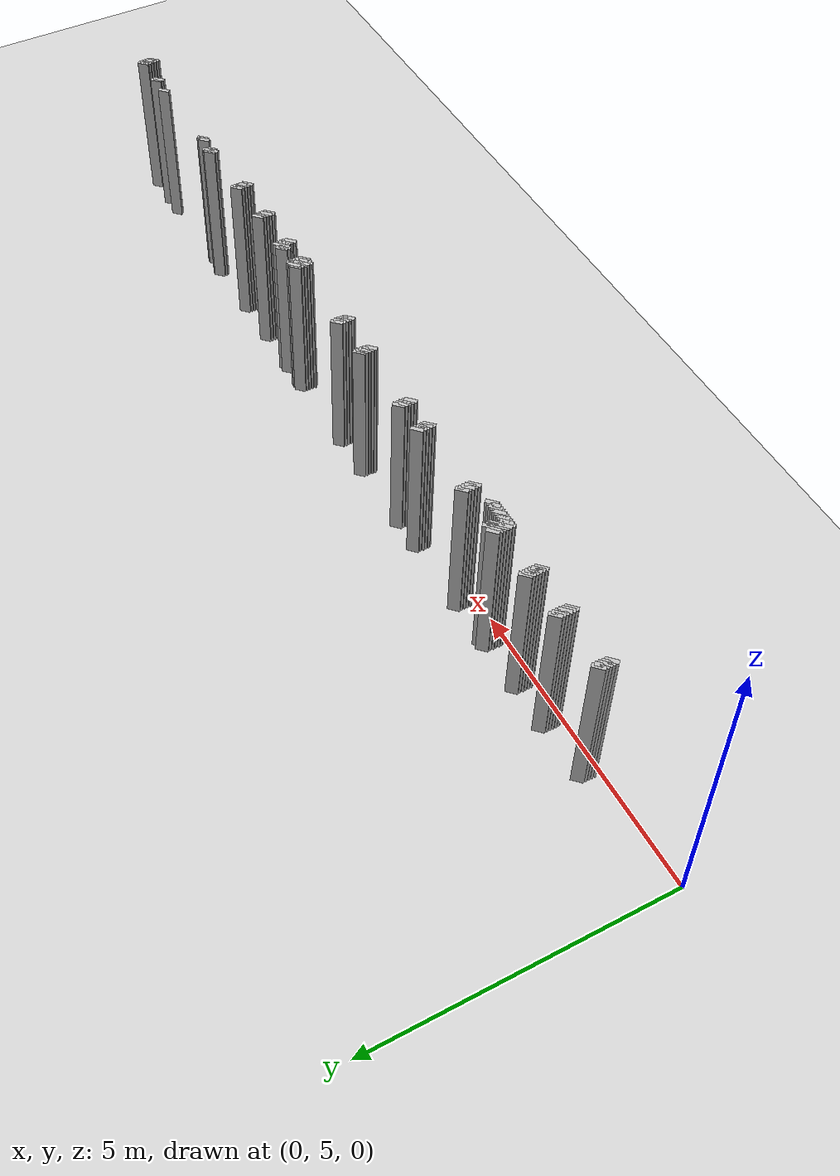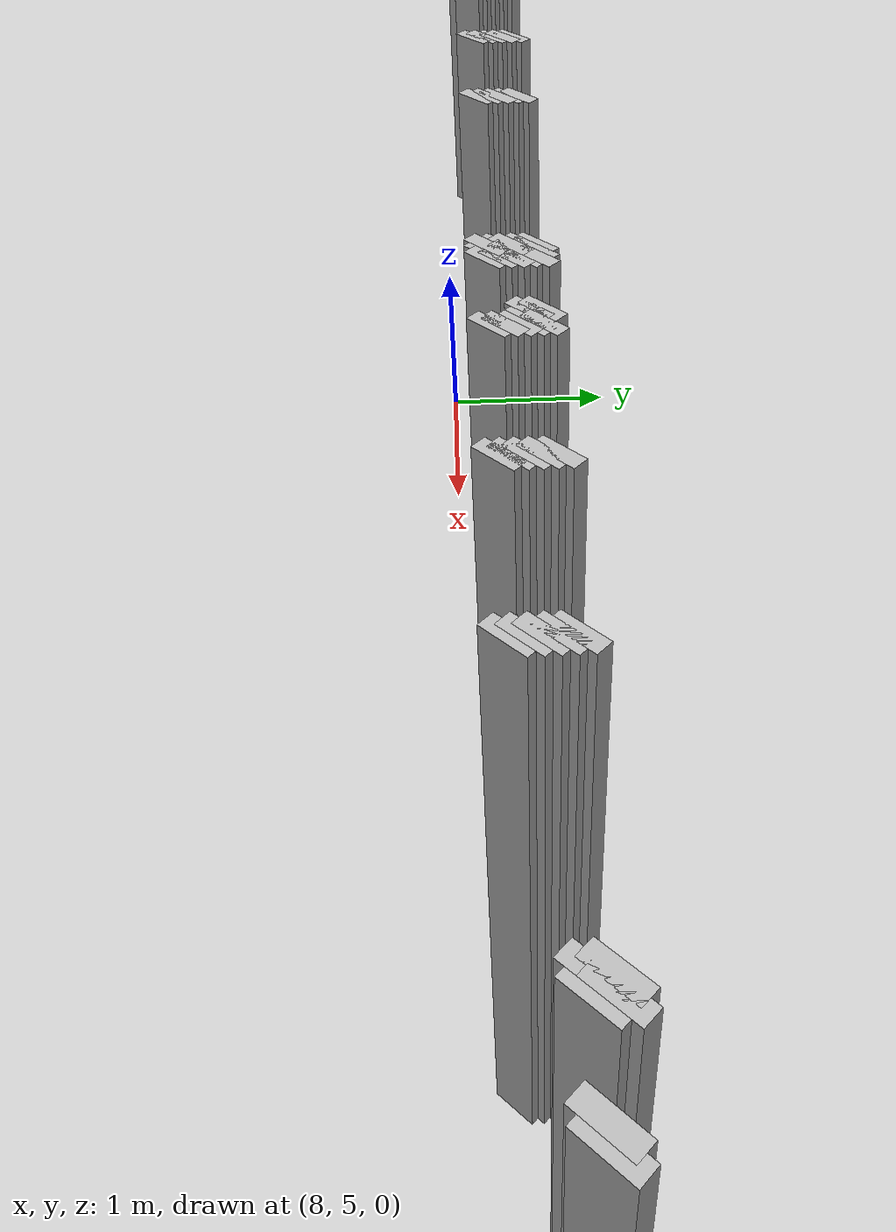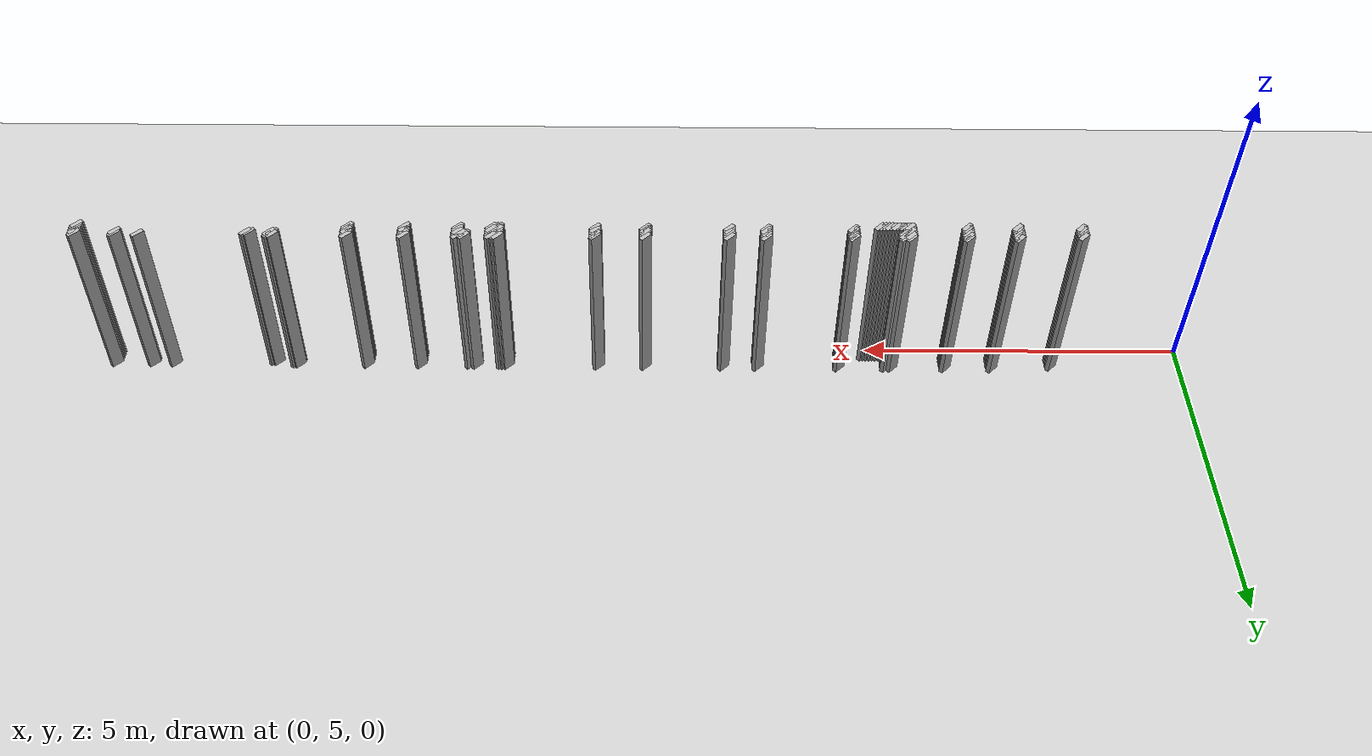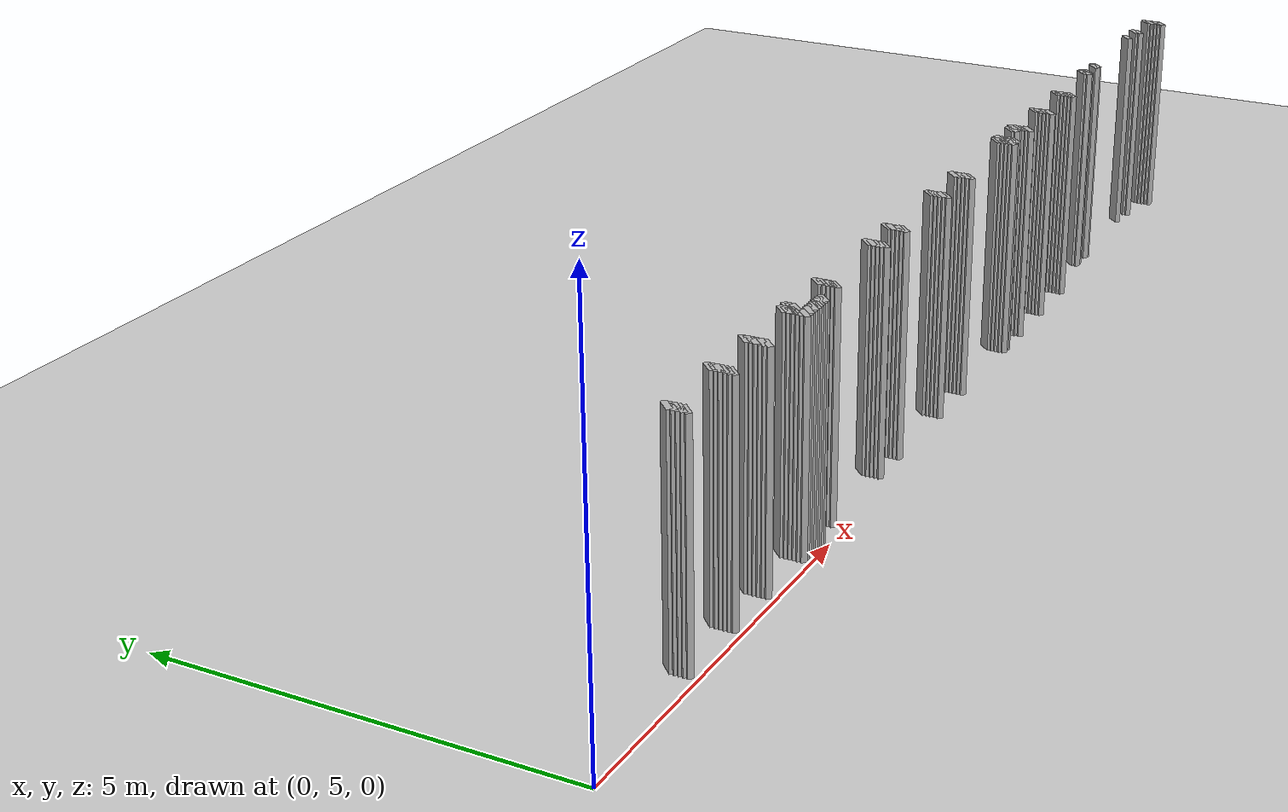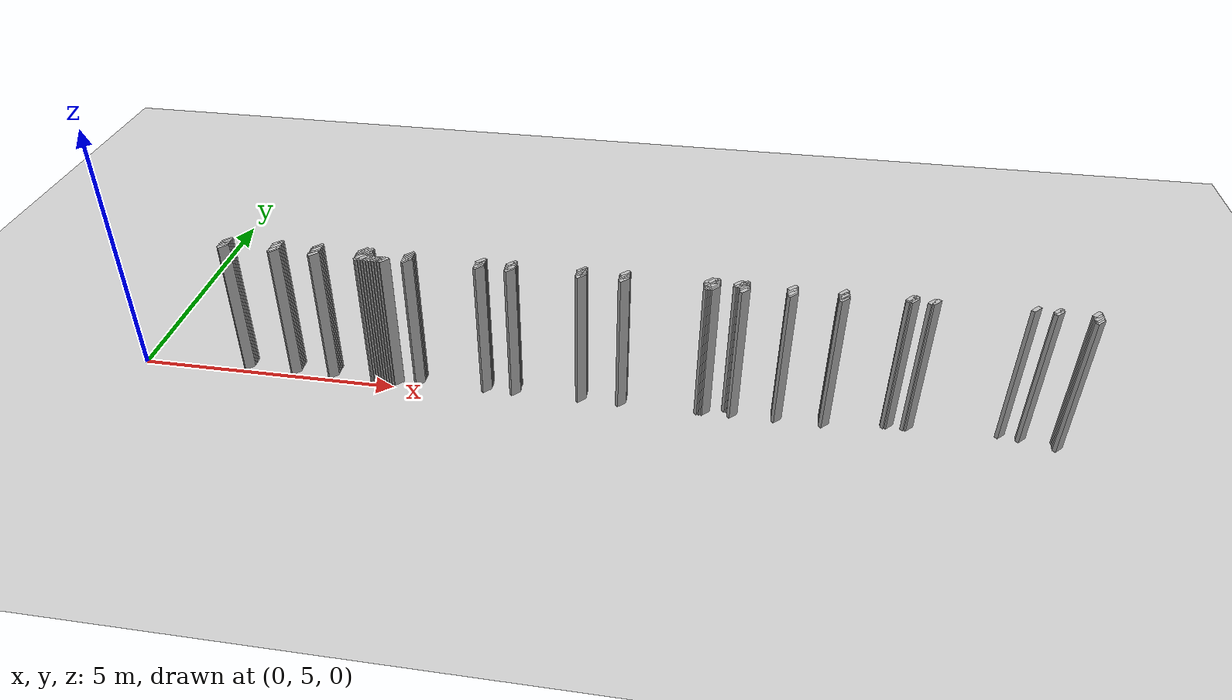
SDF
<sdf version="1.5">
 <world name="default">
  <include><uri>model://ground_plane</uri></include>
  <include><uri>model://sun</uri></include>
  <model name="grey_wall_2863">
   <static>1</static>
   <link name="link">
    <pose>3.0 5.4  1.4 0 0 -0.7853981633974572</pose>
    <collision name="collision">
     <geometry><box><size>0.07071067811865513 .2  2.8</size></box></geometry>
    </collision>
    <visual name="visual">
     <cast_shadows>0</cast_shadows>
     <geometry><box><size>0.07071067811865513 .2  2.8</size></box></geometry>
    </visual>
   </link>
  </model>
  <model name="grey_wall_2864">
   <static>1</static>
   <link name="link">
    <pose>3.75 5.4  1.4 0 0 -0.7853981633974572</pose>
    <collision name="collision">
     <geometry><box><size>0.07071067811865513 .2  2.8</size></box></geometry>
    </collision>
    <visual name="visual">
     <cast_shadows>0</cast_shadows>
     <geometry><box><size>0.07071067811865513 .2  2.8</size></box></geometry>
    </visual>
   </link>
  </model>
  <model name="grey_wall_2865">
   <static>1</static>
   <link name="link">
    <pose>4.6000000000000005 5.4  1.4 0 0 -0.7853981633974483</pose>
    <collision name="collision">
     <geometry><box><size>0.07071067811865576 .2  2.8</size></box></geometry>
    </collision>
    <visual name="visual">
     <cast_shadows>0</cast_shadows>
     <geometry><box><size>0.07071067811865576 .2  2.8</size></box></geometry>
    </visual>
   </link>
  </model>
  <model name="grey_wall_2866">
   <static>1</static>
   <link name="link">
    <pose>4.7 5.4  1.4 0 0 -0.7853981633974483</pose>
    <collision name="collision">
     <geometry><box><size>0.07071067811865576 .2  2.8</size></box></geometry>
    </collision>
    <visual name="visual">
     <cast_shadows>0</cast_shadows>
     <geometry><box><size>0.07071067811865576 .2  2.8</size></box></geometry>
    </visual>
   </link>
  </model>
  <model name="grey_wall_2867">
   <static>1</static>
   <link name="link">
    <pose>5.45 5.4  1.4 0 0 -0.7853981633974483</pose>
    <collision name="collision">
     <geometry><box><size>0.07071067811865576 .2  2.8</size></box></geometry>
    </collision>
    <visual name="visual">
     <cast_shadows>0</cast_shadows>
     <geometry><box><size>0.07071067811865576 .2  2.8</size></box></geometry>
    </visual>
   </link>
  </model>
  <model name="grey_wall_2868">
   <static>1</static>
   <link name="link">
    <pose>6.75 5.4  1.4 0 0 -0.7853981633974483</pose>
    <collision name="collision">
     <geometry><box><size>0.07071067811865576 .2  2.8</size></box></geometry>
    </collision>
    <visual name="visual">
     <cast_shadows>0</cast_shadows>
     <geometry><box><size>0.07071067811865576 .2  2.8</size></box></geometry>
    </visual>
   </link>
  </model>
  <model name="grey_wall_2869">
   <static>1</static>
   <link name="link">
    <pose>7.300000000000001 5.4  1.4 0 0 -0.7853981633974483</pose>
    <collision name="collision">
     <geometry><box><size>0.07071067811865576 .2  2.8</size></box></geometry>
    </collision>
    <visual name="visual">
     <cast_shadows>0</cast_shadows>
     <geometry><box><size>0.07071067811865576 .2  2.8</size></box></geometry>
    </visual>
   </link>
  </model>
  <model name="grey_wall_2870">
   <static>1</static>
   <link name="link">
    <pose>8.55 5.4  1.4 0 0 -0.7853981633974483</pose>
    <collision name="collision">
     <geometry><box><size>0.07071067811865576 .2  2.8</size></box></geometry>
    </collision>
    <visual name="visual">
     <cast_shadows>0</cast_shadows>
     <geometry><box><size>0.07071067811865576 .2  2.8</size></box></geometry>
    </visual>
   </link>
  </model>
  <model name="grey_wall_2871">
   <static>1</static>
   <link name="link">
    <pose>9.3 5.4  1.4 0 0 -0.7853981633974483</pose>
    <collision name="collision">
     <geometry><box><size>0.07071067811865576 .2  2.8</size></box></geometry>
    </collision>
    <visual name="visual">
     <cast_shadows>0</cast_shadows>
     <geometry><box><size>0.07071067811865576 .2  2.8</size></box></geometry>
    </visual>
   </link>
  </model>
  <model name="grey_wall_2872">
   <static>1</static>
   <link name="link">
    <pose>10.75 5.4  1.4 0 0 -0.7853981633974483</pose>
    <collision name="collision">
     <geometry><box><size>0.07071067811865576 .2  2.8</size></box></geometry>
    </collision>
    <visual name="visual">
     <cast_shadows>0</cast_shadows>
     <geometry><box><size>0.07071067811865576 .2  2.8</size></box></geometry>
    </visual>
   </link>
  </model>
  <model name="grey_wall_2873">
   <static>1</static>
   <link name="link">
    <pose>10.8 5.4  1.4 0 0 -0.7853981633974483</pose>
    <collision name="collision">
     <geometry><box><size>0.07071067811865576 .2  2.8</size></box></geometry>
    </collision>
    <visual name="visual">
     <cast_shadows>0</cast_shadows>
     <geometry><box><size>0.07071067811865576 .2  2.8</size></box></geometry>
    </visual>
   </link>
  </model>
  <model name="grey_wall_2874">
   <static>1</static>
   <link name="link">
    <pose>10.850000000000001 5.4  1.4 0 0 -0.7853981633974483</pose>
    <collision name="collision">
     <geometry><box><size>0.07071067811865576 .2  2.8</size></box></geometry>
    </collision>
    <visual name="visual">
     <cast_shadows>0</cast_shadows>
     <geometry><box><size>0.07071067811865576 .2  2.8</size></box></geometry>
    </visual>
   </link>
  </model>
  <model name="grey_wall_2875">
   <static>1</static>
   <link name="link">
    <pose>11.25 5.4  1.4 0 0 -0.7853981633974483</pose>
    <collision name="collision">
     <geometry><box><size>0.07071067811865576 .2  2.8</size></box></geometry>
    </collision>
    <visual name="visual">
     <cast_shadows>0</cast_shadows>
     <geometry><box><size>0.07071067811865576 .2  2.8</size></box></geometry>
    </visual>
   </link>
  </model>
  <model name="grey_wall_2876">
   <static>1</static>
   <link name="link">
    <pose>11.350000000000001 5.4  1.4 0 0 -0.7853981633974483</pose>
    <collision name="collision">
     <geometry><box><size>0.07071067811865576 .2  2.8</size></box></geometry>
    </collision>
    <visual name="visual">
     <cast_shadows>0</cast_shadows>
     <geometry><box><size>0.07071067811865576 .2  2.8</size></box></geometry>
    </visual>
   </link>
  </model>
  <model name="grey_wall_2877">
   <static>1</static>
   <link name="link">
    <pose>12.15 5.4  1.4 0 0 -0.7853981633974483</pose>
    <collision name="collision">
     <geometry><box><size>0.07071067811865576 .2  2.8</size></box></geometry>
    </collision>
    <visual name="visual">
     <cast_shadows>0</cast_shadows>
     <geometry><box><size>0.07071067811865576 .2  2.8</size></box></geometry>
    </visual>
   </link>
  </model>
  <model name="grey_wall_2878">
   <static>1</static>
   <link name="link">
    <pose>13.0 5.4  1.4 0 0 -0.7853981633974483</pose>
    <collision name="collision">
     <geometry><box><size>0.07071067811865576 .2  2.8</size></box></geometry>
    </collision>
    <visual name="visual">
     <cast_shadows>0</cast_shadows>
     <geometry><box><size>0.07071067811865576 .2  2.8</size></box></geometry>
    </visual>
   </link>
  </model>
  <model name="grey_wall_2879">
   <static>1</static>
   <link name="link">
    <pose>14.100000000000001 5.4  1.4 0 0 -0.7853981633974483</pose>
    <collision name="collision">
     <geometry><box><size>0.07071067811865576 .2  2.8</size></box></geometry>
    </collision>
    <visual name="visual">
     <cast_shadows>0</cast_shadows>
     <geometry><box><size>0.07071067811865576 .2  2.8</size></box></geometry>
    </visual>
   </link>
  </model>
  <model name="grey_wall_2880">
   <static>1</static>
   <link name="link">
    <pose>14.15 5.4  1.4 0 0 -0.7853981633974483</pose>
    <collision name="collision">
     <geometry><box><size>0.07071067811865576 .2  2.8</size></box></geometry>
    </collision>
    <visual name="visual">
     <cast_shadows>0</cast_shadows>
     <geometry><box><size>0.07071067811865576 .2  2.8</size></box></geometry>
    </visual>
   </link>
  </model>
  <model name="grey_wall_2881">
   <static>1</static>
   <link name="link">
    <pose>16.1 5.4  1.4 0 0 -0.7853981633974838</pose>
    <collision name="collision">
     <geometry><box><size>0.07071067811865325 .2  2.8</size></box></geometry>
    </collision>
    <visual name="visual">
     <cast_shadows>0</cast_shadows>
     <geometry><box><size>0.07071067811865325 .2  2.8</size></box></geometry>
    </visual>
   </link>
  </model>
  <model name="grey_wall_2882">
   <static>1</static>
   <link name="link">
    <pose>16.45 5.4  1.4 0 0 -0.7853981633974838</pose>
    <collision name="collision">
     <geometry><box><size>0.07071067811865325 .2  2.8</size></box></geometry>
    </collision>
    <visual name="visual">
     <cast_shadows>0</cast_shadows>
     <geometry><box><size>0.07071067811865325 .2  2.8</size></box></geometry>
    </visual>
   </link>
  </model>
  <model name="grey_wall_2883">
   <static>1</static>
   <link name="link">
    <pose>17.05 5.4  1.4 0 0 -0.7853981633974838</pose>
    <collision name="collision">
     <geometry><box><size>0.07071067811865325 .2  2.8</size></box></geometry>
    </collision>
    <visual name="visual">
     <cast_shadows>0</cast_shadows>
     <geometry><box><size>0.07071067811865325 .2  2.8</size></box></geometry>
    </visual>
   </link>
  </model>
  <model name="grey_wall_2884">
   <static>1</static>
   <link name="link">
    <pose>2.0500000000000003 5.3500000000000005  1.4 0 0 -0.7853981633974572</pose>
    <collision name="collision">
     <geometry><box><size>0.07071067811865513 .2  2.8</size></box></geometry>
    </collision>
    <visual name="visual">
     <cast_shadows>0</cast_shadows>
     <geometry><box><size>0.07071067811865513 .2  2.8</size></box></geometry>
    </visual>
   </link>
  </model>
  <model name="grey_wall_2885">
   <static>1</static>
   <link name="link">
    <pose>3.0 5.3500000000000005  1.4 0 0 -0.7853981633974572</pose>
    <collision name="collision">
     <geometry><box><size>0.07071067811865513 .2  2.8</size></box></geometry>
    </collision>
    <visual name="visual">
     <cast_shadows>0</cast_shadows>
     <geometry><box><size>0.07071067811865513 .2  2.8</size></box></geometry>
    </visual>
   </link>
  </model>
  <model name="grey_wall_2886">
   <static>1</static>
   <link name="link">
    <pose>3.75 5.3500000000000005  1.4 0 0 -0.7853981633974572</pose>
    <collision name="collision">
     <geometry><box><size>0.07071067811865513 .2  2.8</size></box></geometry>
    </collision>
    <visual name="visual">
     <cast_shadows>0</cast_shadows>
     <geometry><box><size>0.07071067811865513 .2  2.8</size></box></geometry>
    </visual>
   </link>
  </model>
  <model name="grey_wall_2887">
   <static>1</static>
   <link name="link">
    <pose>4.6000000000000005 5.3500000000000005  1.4 0 0 -0.7853981633974483</pose>
    <collision name="collision">
     <geometry><box><size>0.07071067811865576 .2  2.8</size></box></geometry>
    </collision>
    <visual name="visual">
     <cast_shadows>0</cast_shadows>
     <geometry><box><size>0.07071067811865576 .2  2.8</size></box></geometry>
    </visual>
   </link>
  </model>
  <model name="grey_wall_2888">
   <static>1</static>
   <link name="link">
    <pose>4.7 5.3500000000000005  1.4 0 0 -0.7853981633974483</pose>
    <collision name="collision">
     <geometry><box><size>0.07071067811865576 .2  2.8</size></box></geometry>
    </collision>
    <visual name="visual">
     <cast_shadows>0</cast_shadows>
     <geometry><box><size>0.07071067811865576 .2  2.8</size></box></geometry>
    </visual>
   </link>
  </model>
  <model name="grey_wall_2889">
   <static>1</static>
   <link name="link">
    <pose>5.45 5.3500000000000005  1.4 0 0 -0.7853981633974483</pose>
    <collision name="collision">
     <geometry><box><size>0.07071067811865576 .2  2.8</size></box></geometry>
    </collision>
    <visual name="visual">
     <cast_shadows>0</cast_shadows>
     <geometry><box><size>0.07071067811865576 .2  2.8</size></box></geometry>
    </visual>
   </link>
  </model>
  <model name="grey_wall_2890">
   <static>1</static>
   <link name="link">
    <pose>6.75 5.3500000000000005  1.4 0 0 -0.7853981633974483</pose>
    <collision name="collision">
     <geometry><box><size>0.07071067811865576 .2  2.8</size></box></geometry>
    </collision>
    <visual name="visual">
     <cast_shadows>0</cast_shadows>
     <geometry><box><size>0.07071067811865576 .2  2.8</size></box></geometry>
    </visual>
   </link>
  </model>
  <model name="grey_wall_2891">
   <static>1</static>
   <link name="link">
    <pose>7.300000000000001 5.3500000000000005  1.4 0 0 -0.7853981633974483</pose>
    <collision name="collision">
     <geometry><box><size>0.07071067811865576 .2  2.8</size></box></geometry>
    </collision>
    <visual name="visual">
     <cast_shadows>0</cast_shadows>
     <geometry><box><size>0.07071067811865576 .2  2.8</size></box></geometry>
    </visual>
   </link>
  </model>
  <model name="grey_wall_2892">
   <static>1</static>
   <link name="link">
    <pose>8.55 5.3500000000000005  1.4 0 0 -0.7853981633974483</pose>
    <collision name="collision">
     <geometry><box><size>0.07071067811865576 .2  2.8</size></box></geometry>
    </collision>
    <visual name="visual">
     <cast_shadows>0</cast_shadows>
     <geometry><box><size>0.07071067811865576 .2  2.8</size></box></geometry>
    </visual>
   </link>
  </model>
  <model name="grey_wall_2893">
   <static>1</static>
   <link name="link">
    <pose>9.3 5.3500000000000005  1.4 0 0 -0.7853981633974483</pose>
    <collision name="collision">
     <geometry><box><size>0.07071067811865576 .2  2.8</size></box></geometry>
    </collision>
    <visual name="visual">
     <cast_shadows>0</cast_shadows>
     <geometry><box><size>0.07071067811865576 .2  2.8</size></box></geometry>
    </visual>
   </link>
  </model>
  <model name="grey_wall_2894">
   <static>1</static>
   <link name="link">
    <pose>10.75 5.3500000000000005  1.4 0 0 -0.7853981633974483</pose>
    <collision name="collision">
     <geometry><box><size>0.07071067811865576 .2  2.8</size></box></geometry>
    </collision>
    <visual name="visual">
     <cast_shadows>0</cast_shadows>
     <geometry><box><size>0.07071067811865576 .2  2.8</size></box></geometry>
    </visual>
   </link>
  </model>
  <model name="grey_wall_2895">
   <static>1</static>
   <link name="link">
    <pose>10.850000000000001 5.3500000000000005  1.4 0 0 -0.7853981633974483</pose>
    <collision name="collision">
     <geometry><box><size>0.07071067811865576 .2  2.8</size></box></geometry>
    </collision>
    <visual name="visual">
     <cast_shadows>0</cast_shadows>
     <geometry><box><size>0.07071067811865576 .2  2.8</size></box></geometry>
    </visual>
   </link>
  </model>
  <model name="grey_wall_2896">
   <static>1</static>
   <link name="link">
    <pose>11.25 5.3500000000000005  1.4 0 0 -0.7853981633974483</pose>
    <collision name="collision">
     <geometry><box><size>0.07071067811865576 .2  2.8</size></box></geometry>
    </collision>
    <visual name="visual">
     <cast_shadows>0</cast_shadows>
     <geometry><box><size>0.07071067811865576 .2  2.8</size></box></geometry>
    </visual>
   </link>
  </model>
  <model name="grey_wall_2897">
   <static>1</static>
   <link name="link">
    <pose>11.3 5.3500000000000005  1.4 0 0 -0.7853981633974483</pose>
    <collision name="collision">
     <geometry><box><size>0.07071067811865576 .2  2.8</size></box></geometry>
    </collision>
    <visual name="visual">
     <cast_shadows>0</cast_shadows>
     <geometry><box><size>0.07071067811865576 .2  2.8</size></box></geometry>
    </visual>
   </link>
  </model>
  <model name="grey_wall_2898">
   <static>1</static>
   <link name="link">
    <pose>11.350000000000001 5.3500000000000005  1.4 0 0 -0.7853981633974483</pose>
    <collision name="collision">
     <geometry><box><size>0.07071067811865576 .2  2.8</size></box></geometry>
    </collision>
    <visual name="visual">
     <cast_shadows>0</cast_shadows>
     <geometry><box><size>0.07071067811865576 .2  2.8</size></box></geometry>
    </visual>
   </link>
  </model>
  <model name="grey_wall_2899">
   <static>1</static>
   <link name="link">
    <pose>12.15 5.3500000000000005  1.4 0 0 -0.7853981633974483</pose>
    <collision name="collision">
     <geometry><box><size>0.07071067811865576 .2  2.8</size></box></geometry>
    </collision>
    <visual name="visual">
     <cast_shadows>0</cast_shadows>
     <geometry><box><size>0.07071067811865576 .2  2.8</size></box></geometry>
    </visual>
   </link>
  </model>
  <model name="grey_wall_2900">
   <static>1</static>
   <link name="link">
    <pose>13.0 5.3500000000000005  1.4 0 0 -0.7853981633974483</pose>
    <collision name="collision">
     <geometry><box><size>0.07071067811865576 .2  2.8</size></box></geometry>
    </collision>
    <visual name="visual">
     <cast_shadows>0</cast_shadows>
     <geometry><box><size>0.07071067811865576 .2  2.8</size></box></geometry>
    </visual>
   </link>
  </model>
  <model name="grey_wall_2901">
   <static>1</static>
   <link name="link">
    <pose>14.100000000000001 5.3500000000000005  1.4 0 0 -0.7853981633974483</pose>
    <collision name="collision">
     <geometry><box><size>0.07071067811865576 .2  2.8</size></box></geometry>
    </collision>
    <visual name="visual">
     <cast_shadows>0</cast_shadows>
     <geometry><box><size>0.07071067811865576 .2  2.8</size></box></geometry>
    </visual>
   </link>
  </model>
  <model name="grey_wall_2902">
   <static>1</static>
   <link name="link">
    <pose>14.15 5.3500000000000005  1.4 0 0 -0.7853981633974483</pose>
    <collision name="collision">
     <geometry><box><size>0.07071067811865576 .2  2.8</size></box></geometry>
    </collision>
    <visual name="visual">
     <cast_shadows>0</cast_shadows>
     <geometry><box><size>0.07071067811865576 .2  2.8</size></box></geometry>
    </visual>
   </link>
  </model>
  <model name="grey_wall_2903">
   <static>1</static>
   <link name="link">
    <pose>14.450000000000001 5.3500000000000005  1.4 0 0 -0.7853981633974483</pose>
    <collision name="collision">
     <geometry><box><size>0.07071067811865576 .2  2.8</size></box></geometry>
    </collision>
    <visual name="visual">
     <cast_shadows>0</cast_shadows>
     <geometry><box><size>0.07071067811865576 .2  2.8</size></box></geometry>
    </visual>
   </link>
  </model>
  <model name="grey_wall_2904">
   <static>1</static>
   <link name="link">
    <pose>14.5 5.3500000000000005  1.4 0 0 -0.7853981633974483</pose>
    <collision name="collision">
     <geometry><box><size>0.07071067811865576 .2  2.8</size></box></geometry>
    </collision>
    <visual name="visual">
     <cast_shadows>0</cast_shadows>
     <geometry><box><size>0.07071067811865576 .2  2.8</size></box></geometry>
    </visual>
   </link>
  </model>
  <model name="grey_wall_2905">
   <static>1</static>
   <link name="link">
    <pose>16.45 5.3500000000000005  1.4 0 0 -0.7853981633974838</pose>
    <collision name="collision">
     <geometry><box><size>0.07071067811865325 .2  2.8</size></box></geometry>
    </collision>
    <visual name="visual">
     <cast_shadows>0</cast_shadows>
     <geometry><box><size>0.07071067811865325 .2  2.8</size></box></geometry>
    </visual>
   </link>
  </model>
  <model name="grey_wall_2906">
   <static>1</static>
   <link name="link">
    <pose>17.05 5.3500000000000005  1.4 0 0 -0.7853981633974838</pose>
    <collision name="collision">
     <geometry><box><size>0.07071067811865325 .2  2.8</size></box></geometry>
    </collision>
    <visual name="visual">
     <cast_shadows>0</cast_shadows>
     <geometry><box><size>0.07071067811865325 .2  2.8</size></box></geometry>
    </visual>
   </link>
  </model>
  <model name="grey_wall_2907">
   <static>1</static>
   <link name="link">
    <pose>2.0500000000000003 5.300000000000001  1.4 0 0 -0.7853981633974572</pose>
    <collision name="collision">
     <geometry><box><size>0.07071067811865513 .2  2.8</size></box></geometry>
    </collision>
    <visual name="visual">
     <cast_shadows>0</cast_shadows>
     <geometry><box><size>0.07071067811865513 .2  2.8</size></box></geometry>
    </visual>
   </link>
  </model>
  <model name="grey_wall_2908">
   <static>1</static>
   <link name="link">
    <pose>3.0 5.300000000000001  1.4 0 0 -0.7853981633974572</pose>
    <collision name="collision">
     <geometry><box><size>0.07071067811865513 .2  2.8</size></box></geometry>
    </collision>
    <visual name="visual">
     <cast_shadows>0</cast_shadows>
     <geometry><box><size>0.07071067811865513 .2  2.8</size></box></geometry>
    </visual>
   </link>
  </model>
  <model name="grey_wall_2909">
   <static>1</static>
   <link name="link">
    <pose>3.75 5.300000000000001  1.4 0 0 -0.7853981633974572</pose>
    <collision name="collision">
     <geometry><box><size>0.07071067811865513 .2  2.8</size></box></geometry>
    </collision>
    <visual name="visual">
     <cast_shadows>0</cast_shadows>
     <geometry><box><size>0.07071067811865513 .2  2.8</size></box></geometry>
    </visual>
   </link>
  </model>
  <model name="grey_wall_2910">
   <static>1</static>
   <link name="link">
    <pose>4.6000000000000005 5.300000000000001  1.4 0 0 -0.7853981633974483</pose>
    <collision name="collision">
     <geometry><box><size>0.07071067811865576 .2  2.8</size></box></geometry>
    </collision>
    <visual name="visual">
     <cast_shadows>0</cast_shadows>
     <geometry><box><size>0.07071067811865576 .2  2.8</size></box></geometry>
    </visual>
   </link>
  </model>
  <model name="grey_wall_2911">
   <static>1</static>
   <link name="link">
    <pose>4.65 5.300000000000001  1.4 0 0 -0.7853981633974483</pose>
    <collision name="collision">
     <geometry><box><size>0.07071067811865576 .2  2.8</size></box></geometry>
    </collision>
    <visual name="visual">
     <cast_shadows>0</cast_shadows>
     <geometry><box><size>0.07071067811865576 .2  2.8</size></box></geometry>
    </visual>
   </link>
  </model>
  <model name="grey_wall_2912">
   <static>1</static>
   <link name="link">
    <pose>4.7 5.300000000000001  1.4 0 0 -0.7853981633974483</pose>
    <collision name="collision">
     <geometry><box><size>0.07071067811865576 .2  2.8</size></box></geometry>
    </collision>
    <visual name="visual">
     <cast_shadows>0</cast_shadows>
     <geometry><box><size>0.07071067811865576 .2  2.8</size></box></geometry>
    </visual>
   </link>
  </model>
  <model name="grey_wall_2913">
   <static>1</static>
   <link name="link">
    <pose>5.45 5.300000000000001  1.4 0 0 -0.7853981633974483</pose>
    <collision name="collision">
     <geometry><box><size>0.07071067811865576 .2  2.8</size></box></geometry>
    </collision>
    <visual name="visual">
     <cast_shadows>0</cast_shadows>
     <geometry><box><size>0.07071067811865576 .2  2.8</size></box></geometry>
    </visual>
   </link>
  </model>
  <model name="grey_wall_2914">
   <static>1</static>
   <link name="link">
    <pose>6.75 5.300000000000001  1.4 0 0 -0.7853981633974483</pose>
    <collision name="collision">
     <geometry><box><size>0.07071067811865576 .2  2.8</size></box></geometry>
    </collision>
    <visual name="visual">
     <cast_shadows>0</cast_shadows>
     <geometry><box><size>0.07071067811865576 .2  2.8</size></box></geometry>
    </visual>
   </link>
  </model>
  <model name="grey_wall_2915">
   <static>1</static>
   <link name="link">
    <pose>7.300000000000001 5.300000000000001  1.4 0 0 -0.7853981633974483</pose>
    <collision name="collision">
     <geometry><box><size>0.07071067811865576 .2  2.8</size></box></geometry>
    </collision>
    <visual name="visual">
     <cast_shadows>0</cast_shadows>
     <geometry><box><size>0.07071067811865576 .2  2.8</size></box></geometry>
    </visual>
   </link>
  </model>
  <model name="grey_wall_2916">
   <static>1</static>
   <link name="link">
    <pose>8.55 5.300000000000001  1.4 0 0 -0.7853981633974483</pose>
    <collision name="collision">
     <geometry><box><size>0.07071067811865576 .2  2.8</size></box></geometry>
    </collision>
    <visual name="visual">
     <cast_shadows>0</cast_shadows>
     <geometry><box><size>0.07071067811865576 .2  2.8</size></box></geometry>
    </visual>
   </link>
  </model>
  <model name="grey_wall_2917">
   <static>1</static>
   <link name="link">
    <pose>9.3 5.300000000000001  1.4 0 0 -0.7853981633974483</pose>
    <collision name="collision">
     <geometry><box><size>0.07071067811865576 .2  2.8</size></box></geometry>
    </collision>
    <visual name="visual">
     <cast_shadows>0</cast_shadows>
     <geometry><box><size>0.07071067811865576 .2  2.8</size></box></geometry>
    </visual>
   </link>
  </model>
  <model name="grey_wall_2918">
   <static>1</static>
   <link name="link">
    <pose>10.75 5.300000000000001  1.4 0 0 -0.7853981633974483</pose>
    <collision name="collision">
     <geometry><box><size>0.07071067811865576 .2  2.8</size></box></geometry>
    </collision>
    <visual name="visual">
     <cast_shadows>0</cast_shadows>
     <geometry><box><size>0.07071067811865576 .2  2.8</size></box></geometry>
    </visual>
   </link>
  </model>
  <model name="grey_wall_2919">
   <static>1</static>
   <link name="link">
    <pose>10.8 5.300000000000001  1.4 0 0 -0.7853981633974483</pose>
    <collision name="collision">
     <geometry><box><size>0.07071067811865576 .2  2.8</size></box></geometry>
    </collision>
    <visual name="visual">
     <cast_shadows>0</cast_shadows>
     <geometry><box><size>0.07071067811865576 .2  2.8</size></box></geometry>
    </visual>
   </link>
  </model>
  <model name="grey_wall_2920">
   <static>1</static>
   <link name="link">
    <pose>10.850000000000001 5.300000000000001  1.4 0 0 -0.7853981633974483</pose>
    <collision name="collision">
     <geometry><box><size>0.07071067811865576 .2  2.8</size></box></geometry>
    </collision>
    <visual name="visual">
     <cast_shadows>0</cast_shadows>
     <geometry><box><size>0.07071067811865576 .2  2.8</size></box></geometry>
    </visual>
   </link>
  </model>
  <model name="grey_wall_2921">
   <static>1</static>
   <link name="link">
    <pose>11.350000000000001 5.300000000000001  1.4 0 0 -0.7853981633974483</pose>
    <collision name="collision">
     <geometry><box><size>0.07071067811865576 .2  2.8</size></box></geometry>
    </collision>
    <visual name="visual">
     <cast_shadows>0</cast_shadows>
     <geometry><box><size>0.07071067811865576 .2  2.8</size></box></geometry>
    </visual>
   </link>
  </model>
  <model name="grey_wall_2922">
   <static>1</static>
   <link name="link">
    <pose>12.15 5.300000000000001  1.4 0 0 -0.7853981633974483</pose>
    <collision name="collision">
     <geometry><box><size>0.07071067811865576 .2  2.8</size></box></geometry>
    </collision>
    <visual name="visual">
     <cast_shadows>0</cast_shadows>
     <geometry><box><size>0.07071067811865576 .2  2.8</size></box></geometry>
    </visual>
   </link>
  </model>
  <model name="grey_wall_2923">
   <static>1</static>
   <link name="link">
    <pose>13.0 5.300000000000001  1.4 0 0 -0.7853981633974483</pose>
    <collision name="collision">
     <geometry><box><size>0.07071067811865576 .2  2.8</size></box></geometry>
    </collision>
    <visual name="visual">
     <cast_shadows>0</cast_shadows>
     <geometry><box><size>0.07071067811865576 .2  2.8</size></box></geometry>
    </visual>
   </link>
  </model>
  <model name="grey_wall_2924">
   <static>1</static>
   <link name="link">
    <pose>17.05 5.300000000000001  1.4 0 0 -0.7853981633974838</pose>
    <collision name="collision">
     <geometry><box><size>0.07071067811865325 .2  2.8</size></box></geometry>
    </collision>
    <visual name="visual">
     <cast_shadows>0</cast_shadows>
     <geometry><box><size>0.07071067811865325 .2  2.8</size></box></geometry>
    </visual>
   </link>
  </model>
  <model name="grey_wall_2925">
   <static>1</static>
   <link name="link">
    <pose>2.0500000000000003 5.25  1.4 0 0 -0.7853981633974572</pose>
    <collision name="collision">
     <geometry><box><size>0.07071067811865513 .2  2.8</size></box></geometry>
    </collision>
    <visual name="visual">
     <cast_shadows>0</cast_shadows>
     <geometry><box><size>0.07071067811865513 .2  2.8</size></box></geometry>
    </visual>
   </link>
  </model>
  <model name="grey_wall_2926">
   <static>1</static>
   <link name="link">
    <pose>3.0 5.25  1.4 0 0 -0.7853981633974572</pose>
    <collision name="collision">
     <geometry><box><size>0.07071067811865513 .2  2.8</size></box></geometry>
    </collision>
    <visual name="visual">
     <cast_shadows>0</cast_shadows>
     <geometry><box><size>0.07071067811865513 .2  2.8</size></box></geometry>
    </visual>
   </link>
  </model>
  <model name="grey_wall_2927">
   <static>1</static>
   <link name="link">
    <pose>3.75 5.25  1.4 0 0 -0.7853981633974572</pose>
    <collision name="collision">
     <geometry><box><size>0.07071067811865513 .2  2.8</size></box></geometry>
    </collision>
    <visual name="visual">
     <cast_shadows>0</cast_shadows>
     <geometry><box><size>0.07071067811865513 .2  2.8</size></box></geometry>
    </visual>
   </link>
  </model>
  <model name="grey_wall_2928">
   <static>1</static>
   <link name="link">
    <pose>4.6000000000000005 5.25  1.4 0 0 -0.7853981633974483</pose>
    <collision name="collision">
     <geometry><box><size>0.07071067811865576 .2  2.8</size></box></geometry>
    </collision>
    <visual name="visual">
     <cast_shadows>0</cast_shadows>
     <geometry><box><size>0.07071067811865576 .2  2.8</size></box></geometry>
    </visual>
   </link>
  </model>
  <model name="grey_wall_2929">
   <static>1</static>
   <link name="link">
    <pose>5.45 5.25  1.4 0 0 -0.7853981633974483</pose>
    <collision name="collision">
     <geometry><box><size>0.07071067811865576 .2  2.8</size></box></geometry>
    </collision>
    <visual name="visual">
     <cast_shadows>0</cast_shadows>
     <geometry><box><size>0.07071067811865576 .2  2.8</size></box></geometry>
    </visual>
   </link>
  </model>
  <model name="grey_wall_2930">
   <static>1</static>
   <link name="link">
    <pose>6.75 5.25  1.4 0 0 -0.7853981633974483</pose>
    <collision name="collision">
     <geometry><box><size>0.07071067811865576 .2  2.8</size></box></geometry>
    </collision>
    <visual name="visual">
     <cast_shadows>0</cast_shadows>
     <geometry><box><size>0.07071067811865576 .2  2.8</size></box></geometry>
    </visual>
   </link>
  </model>
  <model name="grey_wall_2931">
   <static>1</static>
   <link name="link">
    <pose>7.300000000000001 5.25  1.4 0 0 -0.7853981633974483</pose>
    <collision name="collision">
     <geometry><box><size>0.07071067811865576 .2  2.8</size></box></geometry>
    </collision>
    <visual name="visual">
     <cast_shadows>0</cast_shadows>
     <geometry><box><size>0.07071067811865576 .2  2.8</size></box></geometry>
    </visual>
   </link>
  </model>
  <model name="grey_wall_2932">
   <static>1</static>
   <link name="link">
    <pose>8.55 5.25  1.4 0 0 -0.7853981633974483</pose>
    <collision name="collision">
     <geometry><box><size>0.07071067811865576 .2  2.8</size></box></geometry>
    </collision>
    <visual name="visual">
     <cast_shadows>0</cast_shadows>
     <geometry><box><size>0.07071067811865576 .2  2.8</size></box></geometry>
    </visual>
   </link>
  </model>
  <model name="grey_wall_2933">
   <static>1</static>
   <link name="link">
    <pose>9.3 5.25  1.4 0 0 -0.7853981633974483</pose>
    <collision name="collision">
     <geometry><box><size>0.07071067811865576 .2  2.8</size></box></geometry>
    </collision>
    <visual name="visual">
     <cast_shadows>0</cast_shadows>
     <geometry><box><size>0.07071067811865576 .2  2.8</size></box></geometry>
    </visual>
   </link>
  </model>
  <model name="grey_wall_2934">
   <static>1</static>
   <link name="link">
    <pose>10.75 5.25  1.4 0 0 -0.7853981633974483</pose>
    <collision name="collision">
     <geometry><box><size>0.07071067811865576 .2  2.8</size></box></geometry>
    </collision>
    <visual name="visual">
     <cast_shadows>0</cast_shadows>
     <geometry><box><size>0.07071067811865576 .2  2.8</size></box></geometry>
    </visual>
   </link>
  </model>
  <model name="grey_wall_2935">
   <static>1</static>
   <link name="link">
    <pose>10.850000000000001 5.25  1.4 0 0 -0.7853981633974483</pose>
    <collision name="collision">
     <geometry><box><size>0.07071067811865576 .2  2.8</size></box></geometry>
    </collision>
    <visual name="visual">
     <cast_shadows>0</cast_shadows>
     <geometry><box><size>0.07071067811865576 .2  2.8</size></box></geometry>
    </visual>
   </link>
  </model>
  <model name="grey_wall_2936">
   <static>1</static>
   <link name="link">
    <pose>11.350000000000001 5.25  1.4 0 0 -0.7853981633974483</pose>
    <collision name="collision">
     <geometry><box><size>0.07071067811865576 .2  2.8</size></box></geometry>
    </collision>
    <visual name="visual">
     <cast_shadows>0</cast_shadows>
     <geometry><box><size>0.07071067811865576 .2  2.8</size></box></geometry>
    </visual>
   </link>
  </model>
  <model name="grey_wall_2937">
   <static>1</static>
   <link name="link">
    <pose>12.15 5.25  1.4 0 0 -0.7853981633974483</pose>
    <collision name="collision">
     <geometry><box><size>0.07071067811865576 .2  2.8</size></box></geometry>
    </collision>
    <visual name="visual">
     <cast_shadows>0</cast_shadows>
     <geometry><box><size>0.07071067811865576 .2  2.8</size></box></geometry>
    </visual>
   </link>
  </model>
  <model name="grey_wall_2938">
   <static>1</static>
   <link name="link">
    <pose>13.0 5.25  1.4 0 0 -0.7853981633974483</pose>
    <collision name="collision">
     <geometry><box><size>0.07071067811865576 .2  2.8</size></box></geometry>
    </collision>
    <visual name="visual">
     <cast_shadows>0</cast_shadows>
     <geometry><box><size>0.07071067811865576 .2  2.8</size></box></geometry>
    </visual>
   </link>
  </model>
  <model name="grey_wall_2939">
   <static>1</static>
   <link name="link">
    <pose>17.05 5.25  1.4 0 0 -0.7853981633974838</pose>
    <collision name="collision">
     <geometry><box><size>0.07071067811865325 .2  2.8</size></box></geometry>
    </collision>
    <visual name="visual">
     <cast_shadows>0</cast_shadows>
     <geometry><box><size>0.07071067811865325 .2  2.8</size></box></geometry>
    </visual>
   </link>
  </model>
  <model name="grey_wall_2940">
   <static>1</static>
   <link name="link">
    <pose>2.0500000000000003 5.2  1.4 0 0 -0.7853981633974572</pose>
    <collision name="collision">
     <geometry><box><size>0.07071067811865513 .2  2.8</size></box></geometry>
    </collision>
    <visual name="visual">
     <cast_shadows>0</cast_shadows>
     <geometry><box><size>0.07071067811865513 .2  2.8</size></box></geometry>
    </visual>
   </link>
  </model>
  <model name="grey_wall_2941">
   <static>1</static>
   <link name="link">
    <pose>3.0 5.2  1.4 0 0 -0.7853981633974572</pose>
    <collision name="collision">
     <geometry><box><size>0.07071067811865513 .2  2.8</size></box></geometry>
    </collision>
    <visual name="visual">
     <cast_shadows>0</cast_shadows>
     <geometry><box><size>0.07071067811865513 .2  2.8</size></box></geometry>
    </visual>
   </link>
  </model>
  <model name="grey_wall_2942">
   <static>1</static>
   <link name="link">
    <pose>3.75 5.2  1.4 0 0 -0.7853981633974572</pose>
    <collision name="collision">
     <geometry><box><size>0.07071067811865513 .2  2.8</size></box></geometry>
    </collision>
    <visual name="visual">
     <cast_shadows>0</cast_shadows>
     <geometry><box><size>0.07071067811865513 .2  2.8</size></box></geometry>
    </visual>
   </link>
  </model>
  <model name="grey_wall_2943">
   <static>1</static>
   <link name="link">
    <pose>4.6000000000000005 5.2  1.4 0 0 -0.7853981633974483</pose>
    <collision name="collision">
     <geometry><box><size>0.07071067811865576 .2  2.8</size></box></geometry>
    </collision>
    <visual name="visual">
     <cast_shadows>0</cast_shadows>
     <geometry><box><size>0.07071067811865576 .2  2.8</size></box></geometry>
    </visual>
   </link>
  </model>
  <model name="grey_wall_2944">
   <static>1</static>
   <link name="link">
    <pose>5.45 5.2  1.4 0 0 -0.7853981633974483</pose>
    <collision name="collision">
     <geometry><box><size>0.07071067811865576 .2  2.8</size></box></geometry>
    </collision>
    <visual name="visual">
     <cast_shadows>0</cast_shadows>
     <geometry><box><size>0.07071067811865576 .2  2.8</size></box></geometry>
    </visual>
   </link>
  </model>
  <model name="grey_wall_2945">
   <static>1</static>
   <link name="link">
    <pose>6.75 5.2  1.4 0 0 -0.7853981633974483</pose>
    <collision name="collision">
     <geometry><box><size>0.07071067811865576 .2  2.8</size></box></geometry>
    </collision>
    <visual name="visual">
     <cast_shadows>0</cast_shadows>
     <geometry><box><size>0.07071067811865576 .2  2.8</size></box></geometry>
    </visual>
   </link>
  </model>
  <model name="grey_wall_2946">
   <static>1</static>
   <link name="link">
    <pose>7.300000000000001 5.2  1.4 0 0 -0.7853981633974483</pose>
    <collision name="collision">
     <geometry><box><size>0.07071067811865576 .2  2.8</size></box></geometry>
    </collision>
    <visual name="visual">
     <cast_shadows>0</cast_shadows>
     <geometry><box><size>0.07071067811865576 .2  2.8</size></box></geometry>
    </visual>
   </link>
  </model>
  <model name="grey_wall_2947">
   <static>1</static>
   <link name="link">
    <pose>8.55 5.2  1.4 0 0 -0.7853981633974483</pose>
    <collision name="collision">
     <geometry><box><size>0.07071067811865576 .2  2.8</size></box></geometry>
    </collision>
    <visual name="visual">
     <cast_shadows>0</cast_shadows>
     <geometry><box><size>0.07071067811865576 .2  2.8</size></box></geometry>
    </visual>
   </link>
  </model>
  <model name="grey_wall_2948">
   <static>1</static>
   <link name="link">
    <pose>9.3 5.2  1.4 0 0 -0.7853981633974483</pose>
    <collision name="collision">
     <geometry><box><size>0.07071067811865576 .2  2.8</size></box></geometry>
    </collision>
    <visual name="visual">
     <cast_shadows>0</cast_shadows>
     <geometry><box><size>0.07071067811865576 .2  2.8</size></box></geometry>
    </visual>
   </link>
  </model>
  <model name="grey_wall_2949">
   <static>1</static>
   <link name="link">
    <pose>10.75 5.2  1.4 0 0 -0.7853981633974483</pose>
    <collision name="collision">
     <geometry><box><size>0.07071067811865576 .2  2.8</size></box></geometry>
    </collision>
    <visual name="visual">
     <cast_shadows>0</cast_shadows>
     <geometry><box><size>0.07071067811865576 .2  2.8</size></box></geometry>
    </visual>
   </link>
  </model>
  <model name="grey_wall_2950">
   <static>1</static>
   <link name="link">
    <pose>10.8 5.2  1.4 0 0 -0.7853981633974483</pose>
    <collision name="collision">
     <geometry><box><size>0.07071067811865576 .2  2.8</size></box></geometry>
    </collision>
    <visual name="visual">
     <cast_shadows>0</cast_shadows>
     <geometry><box><size>0.07071067811865576 .2  2.8</size></box></geometry>
    </visual>
   </link>
  </model>
  <model name="grey_wall_2951">
   <static>1</static>
   <link name="link">
    <pose>10.850000000000001 5.2  1.4 0 0 -0.7853981633974483</pose>
    <collision name="collision">
     <geometry><box><size>0.07071067811865576 .2  2.8</size></box></geometry>
    </collision>
    <visual name="visual">
     <cast_shadows>0</cast_shadows>
     <geometry><box><size>0.07071067811865576 .2  2.8</size></box></geometry>
    </visual>
   </link>
  </model>
  <model name="grey_wall_2952">
   <static>1</static>
   <link name="link">
    <pose>11.350000000000001 5.2  1.4 0 0 -0.7853981633974483</pose>
    <collision name="collision">
     <geometry><box><size>0.07071067811865576 .2  2.8</size></box></geometry>
    </collision>
    <visual name="visual">
     <cast_shadows>0</cast_shadows>
     <geometry><box><size>0.07071067811865576 .2  2.8</size></box></geometry>
    </visual>
   </link>
  </model>
  <model name="grey_wall_2953">
   <static>1</static>
   <link name="link">
    <pose>12.15 5.2  1.4 0 0 -0.7853981633974483</pose>
    <collision name="collision">
     <geometry><box><size>0.07071067811865576 .2  2.8</size></box></geometry>
    </collision>
    <visual name="visual">
     <cast_shadows>0</cast_shadows>
     <geometry><box><size>0.07071067811865576 .2  2.8</size></box></geometry>
    </visual>
   </link>
  </model>
  <model name="grey_wall_2954">
   <static>1</static>
   <link name="link">
    <pose>13.0 5.2  1.4 0 0 -0.7853981633974483</pose>
    <collision name="collision">
     <geometry><box><size>0.07071067811865576 .2  2.8</size></box></geometry>
    </collision>
    <visual name="visual">
     <cast_shadows>0</cast_shadows>
     <geometry><box><size>0.07071067811865576 .2  2.8</size></box></geometry>
    </visual>
   </link>
  </model>
  <model name="grey_wall_2955">
   <static>1</static>
   <link name="link">
    <pose>17.05 5.2  1.4 0 0 -0.7853981633974838</pose>
    <collision name="collision">
     <geometry><box><size>0.07071067811865325 .2  2.8</size></box></geometry>
    </collision>
    <visual name="visual">
     <cast_shadows>0</cast_shadows>
     <geometry><box><size>0.07071067811865325 .2  2.8</size></box></geometry>
    </visual>
   </link>
  </model>
  <model name="grey_wall_2956">
   <static>1</static>
   <link name="link">
    <pose>2.0500000000000003 5.15  1.4 0 0 -0.7853981633974572</pose>
    <collision name="collision">
     <geometry><box><size>0.07071067811865513 .2  2.8</size></box></geometry>
    </collision>
    <visual name="visual">
     <cast_shadows>0</cast_shadows>
     <geometry><box><size>0.07071067811865513 .2  2.8</size></box></geometry>
    </visual>
   </link>
  </model>
  <model name="grey_wall_2957">
   <static>1</static>
   <link name="link">
    <pose>3.0 5.15  1.4 0 0 -0.7853981633974572</pose>
    <collision name="collision">
     <geometry><box><size>0.07071067811865513 .2  2.8</size></box></geometry>
    </collision>
    <visual name="visual">
     <cast_shadows>0</cast_shadows>
     <geometry><box><size>0.07071067811865513 .2  2.8</size></box></geometry>
    </visual>
   </link>
  </model>
  <model name="grey_wall_2958">
   <static>1</static>
   <link name="link">
    <pose>3.75 5.15  1.4 0 0 -0.7853981633974572</pose>
    <collision name="collision">
     <geometry><box><size>0.07071067811865513 .2  2.8</size></box></geometry>
    </collision>
    <visual name="visual">
     <cast_shadows>0</cast_shadows>
     <geometry><box><size>0.07071067811865513 .2  2.8</size></box></geometry>
    </visual>
   </link>
  </model>
  <model name="grey_wall_2959">
   <static>1</static>
   <link name="link">
    <pose>4.6000000000000005 5.15  1.4 0 0 -0.7853981633974483</pose>
    <collision name="collision">
     <geometry><box><size>0.07071067811865576 .2  2.8</size></box></geometry>
    </collision>
    <visual name="visual">
     <cast_shadows>0</cast_shadows>
     <geometry><box><size>0.07071067811865576 .2  2.8</size></box></geometry>
    </visual>
   </link>
  </model>
  <model name="grey_wall_2960">
   <static>1</static>
   <link name="link">
    <pose>4.65 5.15  1.4 0 0 -0.7853981633974483</pose>
    <collision name="collision">
     <geometry><box><size>0.07071067811865576 .2  2.8</size></box></geometry>
    </collision>
    <visual name="visual">
     <cast_shadows>0</cast_shadows>
     <geometry><box><size>0.07071067811865576 .2  2.8</size></box></geometry>
    </visual>
   </link>
  </model>
  <model name="grey_wall_2961">
   <static>1</static>
   <link name="link">
    <pose>4.7 5.15  1.4 0 0 -0.7853981633974483</pose>
    <collision name="collision">
     <geometry><box><size>0.07071067811865576 .2  2.8</size></box></geometry>
    </collision>
    <visual name="visual">
     <cast_shadows>0</cast_shadows>
     <geometry><box><size>0.07071067811865576 .2  2.8</size></box></geometry>
    </visual>
   </link>
  </model>
  <model name="grey_wall_2962">
   <static>1</static>
   <link name="link">
    <pose>4.75 5.15  1.4 0 0 -0.7853981633974483</pose>
    <collision name="collision">
     <geometry><box><size>0.07071067811865576 .2  2.8</size></box></geometry>
    </collision>
    <visual name="visual">
     <cast_shadows>0</cast_shadows>
     <geometry><box><size>0.07071067811865576 .2  2.8</size></box></geometry>
    </visual>
   </link>
  </model>
  <model name="grey_wall_2963">
   <static>1</static>
   <link name="link">
    <pose>4.800000000000001 5.15  1.4 0 0 -0.7853981633974483</pose>
    <collision name="collision">
     <geometry><box><size>0.07071067811865576 .2  2.8</size></box></geometry>
    </collision>
    <visual name="visual">
     <cast_shadows>0</cast_shadows>
     <geometry><box><size>0.07071067811865576 .2  2.8</size></box></geometry>
    </visual>
   </link>
  </model>
  <model name="grey_wall_2964">
   <static>1</static>
   <link name="link">
    <pose>4.8500000000000005 5.15  1.4 0 0 -0.7853981633974483</pose>
    <collision name="collision">
     <geometry><box><size>0.07071067811865576 .2  2.8</size></box></geometry>
    </collision>
    <visual name="visual">
     <cast_shadows>0</cast_shadows>
     <geometry><box><size>0.07071067811865576 .2  2.8</size></box></geometry>
    </visual>
   </link>
  </model>
  <model name="grey_wall_2965">
   <static>1</static>
   <link name="link">
    <pose>4.9 5.15  1.4 0 0 -0.7853981633974483</pose>
    <collision name="collision">
     <geometry><box><size>0.07071067811865576 .2  2.8</size></box></geometry>
    </collision>
    <visual name="visual">
     <cast_shadows>0</cast_shadows>
     <geometry><box><size>0.07071067811865576 .2  2.8</size></box></geometry>
    </visual>
   </link>
  </model>
  <model name="grey_wall_2966">
   <static>1</static>
   <link name="link">
    <pose>4.95 5.15  1.4 0 0 -0.7853981633974483</pose>
    <collision name="collision">
     <geometry><box><size>0.07071067811865576 .2  2.8</size></box></geometry>
    </collision>
    <visual name="visual">
     <cast_shadows>0</cast_shadows>
     <geometry><box><size>0.07071067811865576 .2  2.8</size></box></geometry>
    </visual>
   </link>
  </model>
  <model name="grey_wall_2967">
   <static>1</static>
   <link name="link">
    <pose>5.0 5.15  1.4 0 0 -0.7853981633974483</pose>
    <collision name="collision">
     <geometry><box><size>0.07071067811865576 .2  2.8</size></box></geometry>
    </collision>
    <visual name="visual">
     <cast_shadows>0</cast_shadows>
     <geometry><box><size>0.07071067811865576 .2  2.8</size></box></geometry>
    </visual>
   </link>
  </model>
  <model name="grey_wall_2968">
   <static>1</static>
   <link name="link">
    <pose>5.050000000000001 5.15  1.4 0 0 -0.7853981633974483</pose>
    <collision name="collision">
     <geometry><box><size>0.07071067811865576 .2  2.8</size></box></geometry>
    </collision>
    <visual name="visual">
     <cast_shadows>0</cast_shadows>
     <geometry><box><size>0.07071067811865576 .2  2.8</size></box></geometry>
    </visual>
   </link>
  </model>
 </world>
</sdf>
